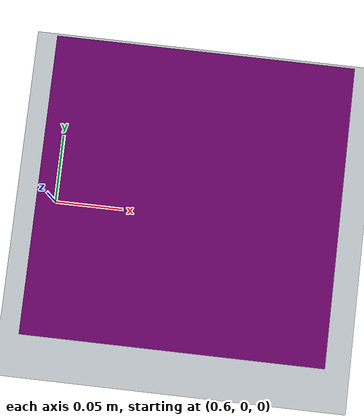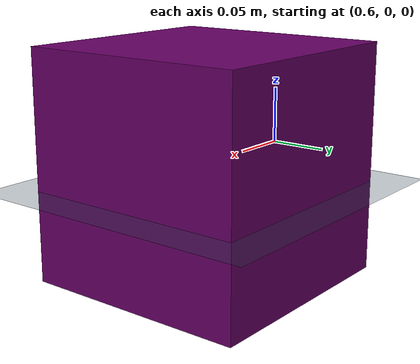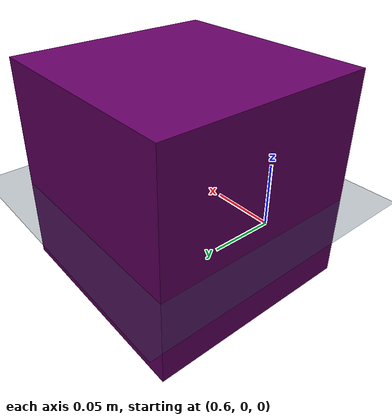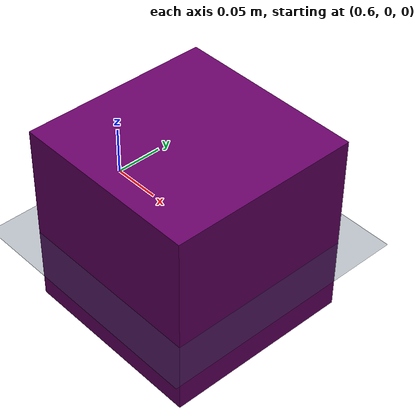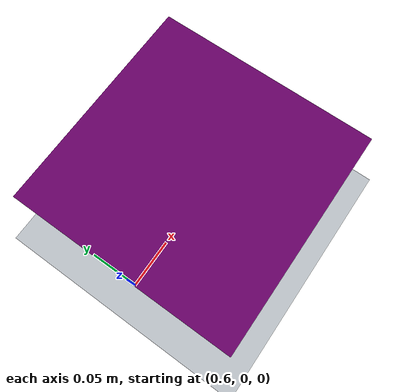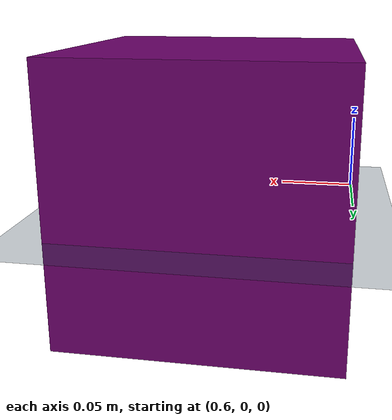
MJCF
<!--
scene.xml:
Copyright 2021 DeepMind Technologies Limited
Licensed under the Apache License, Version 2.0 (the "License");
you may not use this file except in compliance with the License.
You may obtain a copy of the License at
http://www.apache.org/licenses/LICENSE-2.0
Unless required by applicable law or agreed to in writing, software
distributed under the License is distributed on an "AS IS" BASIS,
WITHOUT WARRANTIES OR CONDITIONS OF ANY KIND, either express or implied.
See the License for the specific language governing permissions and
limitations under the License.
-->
<mujoco>
  <extension>
    <plugin plugin="mujoco.sdf.point_cloud">
      <instance name="point_cloud">
        <config key="radius" value="0.02"/>
      </instance>
    </plugin>
  </extension>

  <asset>
    <mesh name="point_cloud">
      <plugin instance="point_cloud"/>
    </mesh>
  </asset>

  <option sdf_iterations="5" sdf_initpoints="20"/>

  <default>
    <geom solref="0.01 1" solimp=".95 .99 .0001" friction="0.2"/>
  </default>

  <statistic meansize=".1"/>

  <include file="scene.xml"/>

  <worldbody>
    <body name="cube" pos="0.7 0.0 0.0">
      <joint name="trans" type="slide" damping="100" axis="1 0 0"/>
      <geom name="cube" type="box" size="0.1 0.1 0.1" rgba="0.4 0.0 0.4 1" margin="3.0" gap="3.0"/>
    </body>
    <body name="point_cloud" pos="0 0 0">
      <!--NOTE: Alpha rgba value of 0.0 so the visuals can be produced by the sdf plugin-->
      <geom type="sdf" name="point_cloud" mesh="point_cloud" rgba="0.0 0.4 0.4 0.0" margin="3.0" gap="3.0">
        <plugin instance="point_cloud"/>
      </geom>
    </body>
    <light name="left" pos="0 0 1"/>
    <light name="right" pos="1 0 1"/>
  </worldbody>

  <actuator>
    <position name="trans_jnt" joint="trans" ctrlrange="-1.0 1.0" ctrllimited="true" kp="4000" kv="60"/>
  </actuator>

  <sensor>
    <distance name="point_cloud_distance_sensor" geom1="cube" geom2="point_cloud" cutoff="10"/>
  </sensor>

</mujoco>

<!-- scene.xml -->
<mujoco>
  <compiler texturedir="asset"/>

  <statistic meansize=".05"/>

  <visual>
    <rgba haze="0.15 0.25 0.35 1"/>
    <map stiffness="700" shadowscale="0.5" fogstart="1" fogend="15" zfar="40" haze="1" shadowclip="3"/>
  </visual>

  <asset>
    <texture type="skybox" builtin="gradient" rgb1="0.3 0.5 0.7" rgb2="0 0 0" width="512" height="512"/>
    <texture name="texplane" type="2d" builtin="checker" rgb1=".2 .3 .4" rgb2=".1 0.15 0.2"
      width="512" height="512" mark="cross" markrgb=".8 .8 .8"/>

    <material name="matplane" reflectance="0.3" texture="texplane" texrepeat="1 1" texuniform="true"/>
  </asset>

  <worldbody>
    <light directional="true" diffuse=".8 .8 .8" specular="0.2 0.2 0.2" pos="0 0 4" dir="0 0 -1"/>
    <geom name="ground" type="plane" pos="0 0 -.02" size="10 10 .01" material="matplane" condim="1"/>
  </worldbody>
</mujoco>
